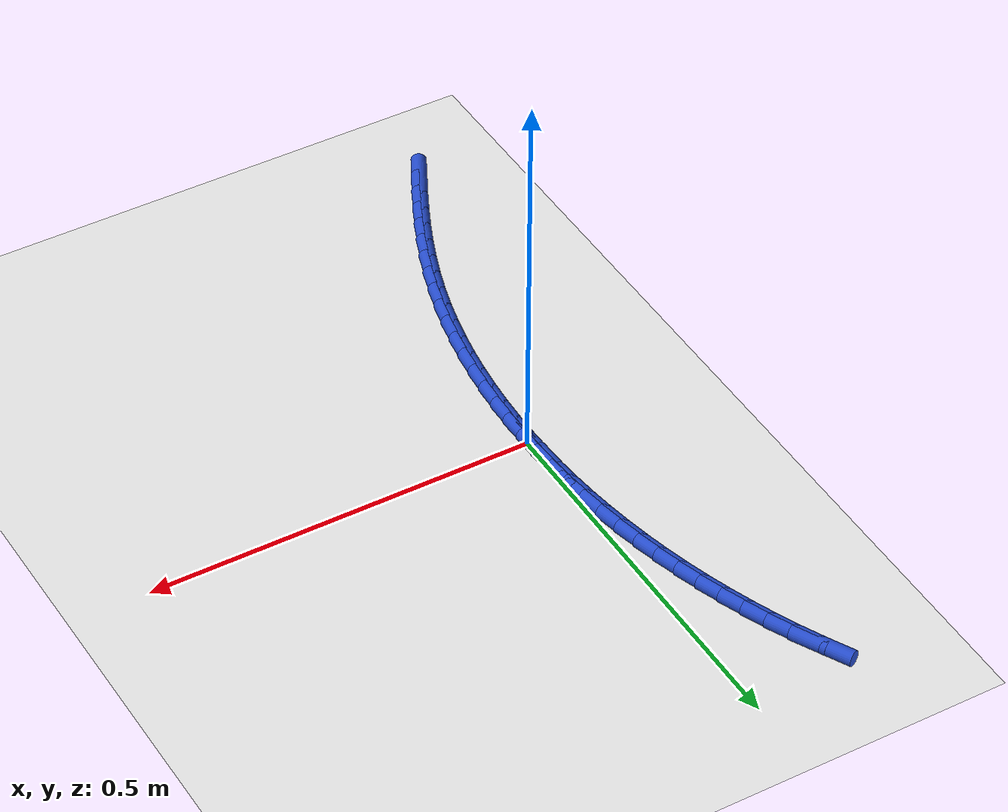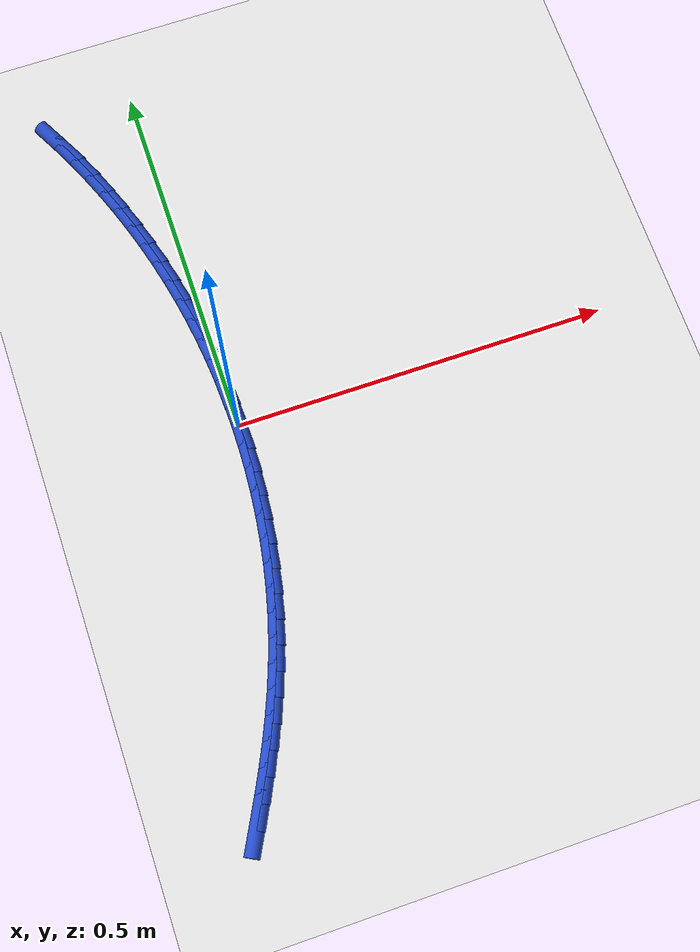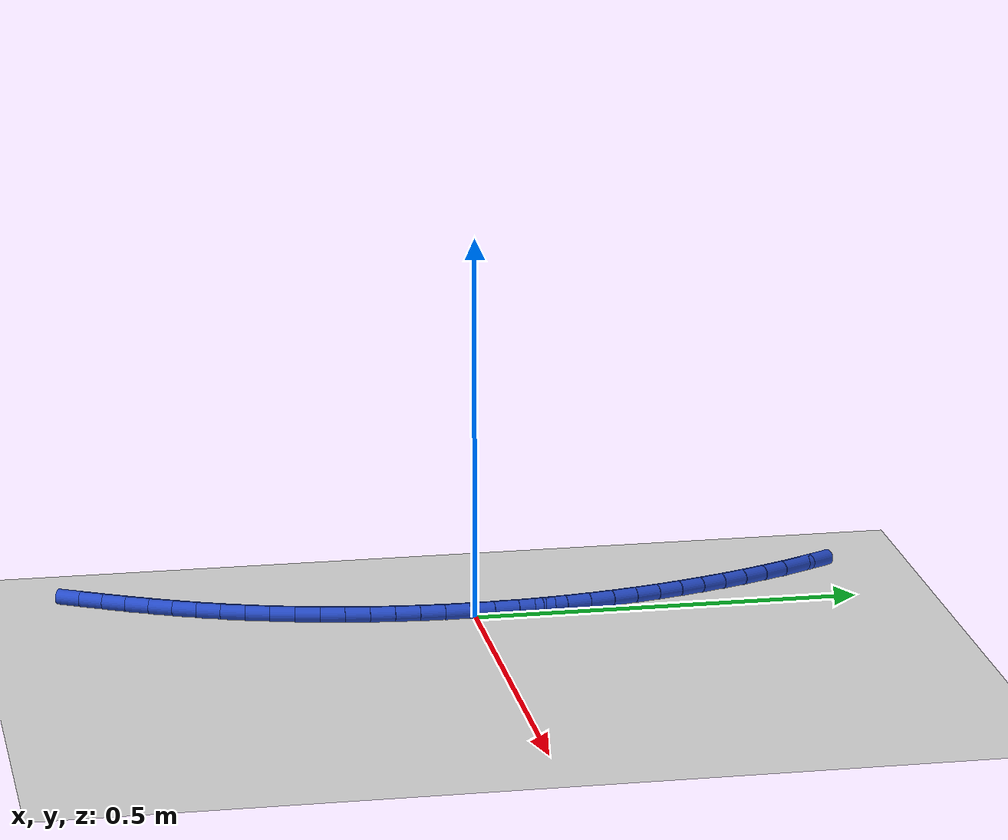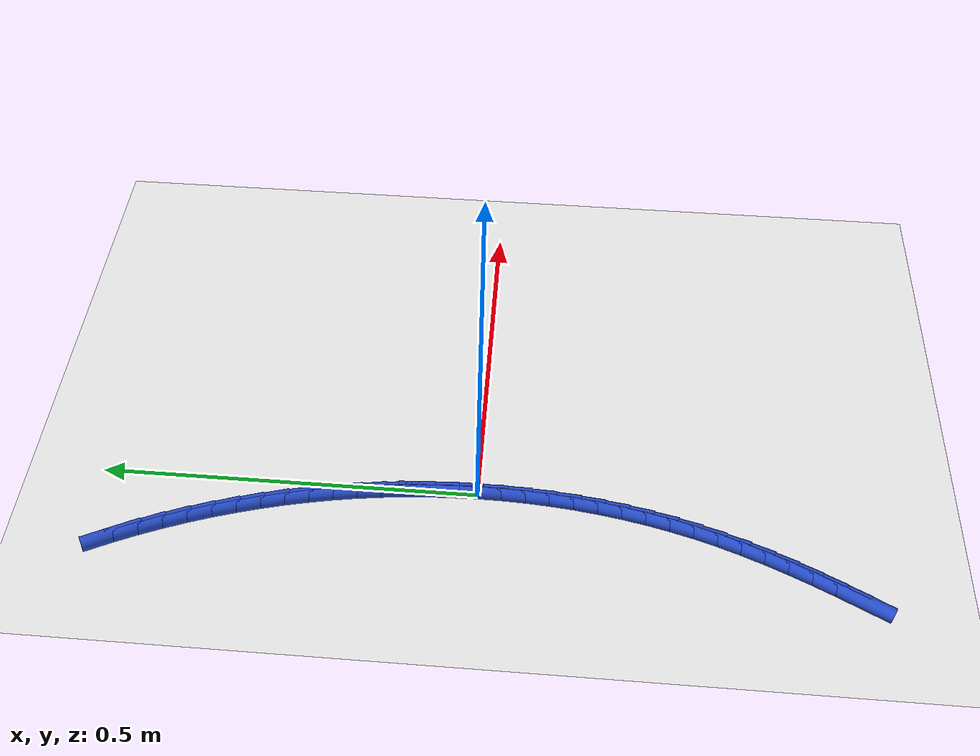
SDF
<sdf version="1.6">
 <world name="default">
  <model name="ground_plane">
   <static>1</static>
   <link name="link">
    <collision name="collision">
     <geometry><plane><normal>0 0 1</normal><size>100 100</size></plane></geometry>
     <surface><friction><ode><mu>100</mu><mu2>50</mu2></ode></friction></surface>
    </collision>
    <visual name="visual">
     <cast_shadows>0</cast_shadows>
     <geometry><plane><normal>0 0 1</normal><size>100 100</size></plane></geometry>
     <material>
      <script><uri>file://media/materials/scripts/gazebo.material</uri><name>Gazebo/WhiteGlow</name></script>
     </material>
    </visual>
   </link>
  </model>
  <model name="line">
   <link name="link_0">
    <pose>-7.806255641895632e-18 -6.938893903907228e-17 0.01 0 1.57 -1.5502114497767827</pose>
    <collision name="collision">
     <geometry><cylinder><radius>0.01</radius><length>0.08</length></cylinder></geometry>
    </collision>
    <visual name="visual">
     <material>
      <script><name>Gazebo/Blue</name><uri>file://media/materials/scripts/gazebo.material</uri></script>
     </material>
     <geometry><cylinder><radius>0.01</radius><length>0.08</length></cylinder></geometry>
    </visual>
   </link>
   <link name="link_1">
    <pose>-0.0006545451815906031 0.03179288983349581 0.01 0 1.57 -1.5194112654657008</pose>
    <collision name="collision">
     <geometry><cylinder><radius>0.01</radius><length>0.08</length></cylinder></geometry>
    </collision>
    <visual name="visual">
     <material>
      <script><name>Gazebo/Blue</name><uri>file://media/materials/scripts/gazebo.material</uri></script>
     </material>
     <geometry><cylinder><radius>0.01</radius><length>0.08</length></cylinder></geometry>
    </visual>
   </link>
   <link name="link_2">
    <pose>-0.002285911572315698 0.0635128150894931 0.01 0 1.57 -1.4886612260125327</pose>
    <collision name="collision">
     <geometry><cylinder><radius>0.01</radius><length>0.08</length></cylinder></geometry>
    </collision>
    <visual name="visual">
     <material>
      <script><name>Gazebo/Blue</name><uri>file://media/materials/scripts/gazebo.material</uri></script>
     </material>
     <geometry><cylinder><radius>0.01</radius><length>0.08</length></cylinder></geometry>
    </visual>
   </link>
   <link name="link_3">
    <pose>-0.004889676211518432 0.09514249386253192 0.01 0 1.57 -1.457968654107246</pose>
    <collision name="collision">
     <geometry><cylinder><radius>0.01</radius><length>0.08</length></cylinder></geometry>
    </collision>
    <visual name="visual">
     <material>
      <script><name>Gazebo/Blue</name><uri>file://media/materials/scripts/gazebo.material</uri></script>
     </material>
     <geometry><cylinder><radius>0.01</radius><length>0.08</length></cylinder></geometry>
    </visual>
   </link>
   <link name="link_4">
    <pose>-0.008461416138541959 0.1266646442471523 0.01 0 1.57 -1.4273402913055626</pose>
    <collision name="collision">
     <geometry><cylinder><radius>0.01</radius><length>0.08</length></cylinder></geometry>
    </collision>
    <visual name="visual">
     <material>
      <script><name>Gazebo/Blue</name><uri>file://media/materials/scripts/gazebo.material</uri></script>
     </material>
     <geometry><cylinder><radius>0.01</radius><length>0.08</length></cylinder></geometry>
    </visual>
   </link>
   <link name="link_5">
    <pose>-0.012996708392729426 0.1580619843378943 0.01 0 1.57 -1.3967823265356045</pose>
    <collision name="collision">
     <geometry><cylinder><radius>0.01</radius><length>0.08</length></cylinder></geometry>
    </collision>
    <visual name="visual">
     <material>
      <script><name>Gazebo/Blue</name><uri>file://media/materials/scripts/gazebo.material</uri></script>
     </material>
     <geometry><cylinder><radius>0.01</radius><length>0.08</length></cylinder></geometry>
    </visual>
   </link>
   <link name="link_6">
    <pose>-0.018491130013423993 0.18931723222929817 0.01 0 1.57 -1.366300429166947</pose>
    <collision name="collision">
     <geometry><cylinder><radius>0.01</radius><length>0.08</length></cylinder></geometry>
    </collision>
    <visual name="visual">
     <material>
      <script><name>Gazebo/Blue</name><uri>file://media/materials/scripts/gazebo.material</uri></script>
     </material>
     <geometry><cylinder><radius>0.01</radius><length>0.08</length></cylinder></geometry>
    </visual>
   </link>
   <link name="link_7">
    <pose>-0.024940258039968806 0.22041310601590383 0.01 0 1.57 -1.3358997859574688</pose>
    <collision name="collision">
     <geometry><cylinder><radius>0.01</radius><length>0.08</length></cylinder></geometry>
    </collision>
    <visual name="visual">
     <material>
      <script><name>Gazebo/Blue</name><uri>file://media/materials/scripts/gazebo.material</uri></script>
     </material>
     <geometry><cylinder><radius>0.01</radius><length>0.08</length></cylinder></geometry>
    </visual>
   </link>
   <link name="link_8">
    <pose>-0.03233966951170701 0.2513323237922514 0.01 0 1.57 -1.305585141182004</pose>
    <collision name="collision">
     <geometry><cylinder><radius>0.01</radius><length>0.08</length></cylinder></geometry>
    </collision>
    <visual name="visual">
     <material>
      <script><name>Gazebo/Blue</name><uri>file://media/materials/scripts/gazebo.material</uri></script>
     </material>
     <geometry><cylinder><radius>0.01</radius><length>0.08</length></cylinder></geometry>
    </visual>
   </link>
   <link name="link_9">
    <pose>-0.04068494146798177 0.282057603652881 0.01 0 1.57 -1.2753534848538681</pose>
    <collision name="collision">
     <geometry><cylinder><radius>0.01</radius><length>0.08</length></cylinder></geometry>
    </collision>
    <visual name="visual">
     <material>
      <script><name>Gazebo/Blue</name><uri>file://media/materials/scripts/gazebo.material</uri></script>
     </material>
     <geometry><cylinder><radius>0.01</radius><length>0.08</length></cylinder></geometry>
    </visual>
   </link>
   <link name="link_10">
    <pose>-0.04997161134263959 0.31257072791308366 0.01 0 1.57 -1.24507595859007</pose>
    <collision name="collision">
     <geometry><cylinder><radius>0.01</radius><length>0.08</length></cylinder></geometry>
    </collision>
    <visual name="visual">
     <material>
      <script><name>Gazebo/Blue</name><uri>file://media/materials/scripts/gazebo.material</uri></script>
     </material>
     <geometry><cylinder><radius>0.01</radius><length>0.08</length></cylinder></geometry>
    </visual>
   </link>
   <link name="link_11">
    <pose>-0.06019458662923318 0.3428385949678555 0.01 0 1.57 -1.2145991080721594</pose>
    <collision name="collision">
     <geometry><cylinder><radius>0.01</radius><length>0.08</length></cylinder></geometry>
    </collision>
    <visual name="visual">
     <material>
      <script><name>Gazebo/Blue</name><uri>file://media/materials/scripts/gazebo.material</uri></script>
     </material>
     <geometry><cylinder><radius>0.01</radius><length>0.08</length></cylinder></geometry>
    </visual>
   </link>
   <link name="link_12">
    <pose>-0.07134827006406931 0.37281617705555664 0.01 0 1.57 -1.1838501128964576</pose>
    <collision name="collision">
     <geometry><cylinder><radius>0.01</radius><length>0.08</length></cylinder></geometry>
    </collision>
    <visual name="visual">
     <material>
      <script><name>Gazebo/Blue</name><uri>file://media/materials/scripts/gazebo.material</uri></script>
     </material>
     <geometry><cylinder><radius>0.01</radius><length>0.08</length></cylinder></geometry>
    </visual>
   </link>
   <link name="link_13">
    <pose>-0.08342705020042383 0.40245811130484677 0.01 0 1.57 -1.1527600652654522</pose>
    <collision name="collision">
     <geometry><cylinder><radius>0.01</radius><length>0.08</length></cylinder></geometry>
    </collision>
    <visual name="visual">
     <material>
      <script><name>Gazebo/Blue</name><uri>file://media/materials/scripts/gazebo.material</uri></script>
     </material>
     <geometry><cylinder><radius>0.01</radius><length>0.08</length></cylinder></geometry>
    </visual>
   </link>
   <link name="link_14">
    <pose>-0.0964253155915726 0.4317190348443852 0.01 0 1.57 -1.1212614168789854</pose>
    <collision name="collision">
     <geometry><cylinder><radius>0.01</radius><length>0.08</length></cylinder></geometry>
    </collision>
    <visual name="visual">
     <material>
      <script><name>Gazebo/Blue</name><uri>file://media/materials/scripts/gazebo.material</uri></script>
     </material>
     <geometry><cylinder><radius>0.01</radius><length>0.08</length></cylinder></geometry>
    </visual>
   </link>
   <link name="link_15">
    <pose>-0.11033745479079128 0.4605535848028308 0.01 0 1.57 -1.089288135667351</pose>
    <collision name="collision">
     <geometry><cylinder><radius>0.01</radius><length>0.08</length></cylinder></geometry>
    </collision>
    <visual name="visual">
     <material>
      <script><name>Gazebo/Blue</name><uri>file://media/materials/scripts/gazebo.material</uri></script>
     </material>
     <geometry><cylinder><radius>0.01</radius><length>0.08</length></cylinder></geometry>
    </visual>
   </link>
   <link name="link_194">
    <pose>-0.12935002741454898 -0.4847009059654976 0.01 0 1.57 1.082067612410626</pose>
    <collision name="collision">
     <geometry><cylinder><radius>0.01</radius><length>0.08</length></cylinder></geometry>
    </collision>
    <visual name="visual">
     <material>
      <script><name>Gazebo/Blue</name><uri>file://media/materials/scripts/gazebo.material</uri></script>
     </material>
     <geometry><cylinder><radius>0.01</radius><length>0.08</length></cylinder></geometry>
    </visual>
   </link>
   <link name="link_195">
    <pose>-0.11442447314265813 -0.45663249423115376 0.01 0 1.57 1.1010715939053046</pose>
    <collision name="collision">
     <geometry><cylinder><radius>0.01</radius><length>0.08</length></cylinder></geometry>
    </collision>
    <visual name="visual">
     <material>
      <script><name>Gazebo/Blue</name><uri>file://media/materials/scripts/gazebo.material</uri></script>
     </material>
     <geometry><cylinder><radius>0.01</radius><length>0.08</length></cylinder></geometry>
    </visual>
   </link>
   <link name="link_196">
    <pose>-0.10006607040061731 -0.4283467438644201 0.01 0 1.57 1.1236674957274262</pose>
    <collision name="collision">
     <geometry><cylinder><radius>0.01</radius><length>0.08</length></cylinder></geometry>
    </collision>
    <visual name="visual">
     <material>
      <script><name>Gazebo/Blue</name><uri>file://media/materials/scripts/gazebo.material</uri></script>
     </material>
     <geometry><cylinder><radius>0.01</radius><length>0.08</length></cylinder></geometry>
    </visual>
   </link>
   <link name="link_197">
    <pose>-0.0863790876703904 -0.3998035835749863 0.01 0 1.57 1.1498758193215313</pose>
    <collision name="collision">
     <geometry><cylinder><radius>0.01</radius><length>0.08</length></cylinder></geometry>
    </collision>
    <visual name="visual">
     <material>
      <script><name>Gazebo/Blue</name><uri>file://media/materials/scripts/gazebo.material</uri></script>
     </material>
     <geometry><cylinder><radius>0.01</radius><length>0.08</length></cylinder></geometry>
    </visual>
   </link>
   <link name="link_198">
    <pose>-0.07346779343394015 -0.3709629420725398 0.01 0 1.57 1.179697467451825</pose>
    <collision name="collision">
     <geometry><cylinder><radius>0.01</radius><length>0.08</length></cylinder></geometry>
    </collision>
    <visual name="visual">
     <material>
      <script><name>Gazebo/Blue</name><uri>file://media/materials/scripts/gazebo.material</uri></script>
     </material>
     <geometry><cylinder><radius>0.01</radius><length>0.08</length></cylinder></geometry>
    </visual>
   </link>
   <link name="link_199">
    <pose>-0.06143645617322975 -0.341784748066769 0.01 0 1.57 1.2131034455704082</pose>
    <collision name="collision">
     <geometry><cylinder><radius>0.01</radius><length>0.08</length></cylinder></geometry>
    </collision>
    <visual name="visual">
     <material>
      <script><name>Gazebo/Blue</name><uri>file://media/materials/scripts/gazebo.material</uri></script>
     </material>
     <geometry><cylinder><radius>0.01</radius><length>0.08</length></cylinder></geometry>
    </visual>
   </link>
   <link name="link_200">
    <pose>-0.05038934437022231 -0.3122289302673619 0.01 0 1.57 1.249968692829405</pose>
    <collision name="collision">
     <geometry><cylinder><radius>0.01</radius><length>0.08</length></cylinder></geometry>
    </collision>
    <visual name="visual">
     <material>
      <script><name>Gazebo/Blue</name><uri>file://media/materials/scripts/gazebo.material</uri></script>
     </material>
     <geometry><cylinder><radius>0.01</radius><length>0.08</length></cylinder></geometry>
    </visual>
   </link>
   <link name="link_201">
    <pose>-0.0404292689809842 -0.2822565252816068 0.01 0 1.57 1.2882527822024525</pose>
    <collision name="collision">
     <geometry><cylinder><radius>0.01</radius><length>0.08</length></cylinder></geometry>
    </collision>
    <visual name="visual">
     <material>
      <script><name>Gazebo/Blue</name><uri>file://media/materials/scripts/gazebo.material</uri></script>
     </material>
     <geometry><cylinder><radius>0.01</radius><length>0.08</length></cylinder></geometry>
    </visual>
   </link>
   <link name="link_202">
    <pose>-0.03160716934435438 -0.25186799847778735 0.01 0 1.57 1.3255368548065216</pose>
    <collision name="collision">
     <geometry><cylinder><radius>0.01</radius><length>0.08</length></cylinder></geometry>
    </collision>
    <visual name="visual">
     <material>
      <script><name>Gazebo/Blue</name><uri>file://media/materials/scripts/gazebo.material</uri></script>
     </material>
     <geometry><cylinder><radius>0.01</radius><length>0.08</length></cylinder></geometry>
    </visual>
   </link>
   <link name="link_203">
    <pose>-0.023909248686778642 -0.2211130225718648 0.01 0 1.57 1.3617337429129805</pose>
    <collision name="collision">
     <geometry><cylinder><radius>0.01</radius><length>0.08</length></cylinder></geometry>
    </collision>
    <visual name="visual">
     <material>
      <script><name>Gazebo/Blue</name><uri>file://media/materials/scripts/gazebo.material</uri></script>
     </material>
     <geometry><cylinder><radius>0.01</radius><length>0.08</length></cylinder></geometry>
    </visual>
   </link>
   <link name="link_204">
    <pose>-0.017317640157098947 -0.1900443640356065 0.01 0 1.57 1.3969162220914713</pose>
    <collision name="collision">
     <geometry><cylinder><radius>0.01</radius><length>0.08</length></cylinder></geometry>
    </collision>
    <visual name="visual">
     <material>
      <script><name>Gazebo/Blue</name><uri>file://media/materials/scripts/gazebo.material</uri></script>
     </material>
     <geometry><cylinder><radius>0.01</radius><length>0.08</length></cylinder></geometry>
    </visual>
   </link>
   <link name="link_205">
    <pose>-0.01181447690415748 -0.15871478934078018 0.01 0 1.57 1.4311623152140365</pose>
    <collision name="collision">
     <geometry><cylinder><radius>0.01</radius><length>0.08</length></cylinder></geometry>
    </collision>
    <visual name="visual">
     <material>
      <script><name>Gazebo/Blue</name><uri>file://media/materials/scripts/gazebo.material</uri></script>
     </material>
     <geometry><cylinder><radius>0.01</radius><length>0.08</length></cylinder></geometry>
    </visual>
   </link>
   <link name="link_206">
    <pose>-0.007381892076796429 -0.12717706495915354 0.01 0 1.57 1.464554078838963</pose>
    <collision name="collision">
     <geometry><cylinder><radius>0.01</radius><length>0.08</length></cylinder></geometry>
    </collision>
    <visual name="visual">
     <material>
      <script><name>Gazebo/Blue</name><uri>file://media/materials/scripts/gazebo.material</uri></script>
     </material>
     <geometry><cylinder><radius>0.01</radius><length>0.08</length></cylinder></geometry>
    </visual>
   </link>
   <link name="link_207">
    <pose>-0.004002018823857969 -0.09548395736249446 0.01 0 1.57 1.49717666642718</pose>
    <collision name="collision">
     <geometry><cylinder><radius>0.01</radius><length>0.08</length></cylinder></geometry>
    </collision>
    <visual name="visual">
     <material>
      <script><name>Gazebo/Blue</name><uri>file://media/materials/scripts/gazebo.material</uri></script>
     </material>
     <geometry><cylinder><radius>0.01</radius><length>0.08</length></cylinder></geometry>
    </visual>
   </link>
   <link name="link_208">
    <pose>-0.0016569902941842916 -0.06368823302257068 0.01 0 1.57 1.5291176447944892</pose>
    <collision name="collision">
     <geometry><cylinder><radius>0.01</radius><length>0.08</length></cylinder></geometry>
    </collision>
    <visual name="visual">
     <material>
      <script><name>Gazebo/Blue</name><uri>file://media/materials/scripts/gazebo.material</uri></script>
     </material>
     <geometry><cylinder><radius>0.01</radius><length>0.08</length></cylinder></geometry>
    </visual>
   </link>
   <link name="link_209">
    <pose>-0.00032893963661755933 -0.03184265841114926 0.01 0 1.57 1.5604665379781666</pose>
    <collision name="collision">
     <geometry><cylinder><radius>0.01</radius><length>0.08</length></cylinder></geometry>
    </collision>
    <visual name="visual">
     <material>
      <script><name>Gazebo/Blue</name><uri>file://media/materials/scripts/gazebo.material</uri></script>
     </material>
     <geometry><cylinder><radius>0.01</radius><length>0.08</length></cylinder></geometry>
    </visual>
   </link>
   <link name="link_210">
    <pose>-1.214306433183765e-17 -2.0122792321330962e-16 0.01 0 1.57 -1.5502780806984178</pose>
    <collision name="collision">
     <geometry><cylinder><radius>0.01</radius><length>0.08</length></cylinder></geometry>
    </collision>
    <visual name="visual">
     <material>
      <script><name>Gazebo/Blue</name><uri>file://media/materials/scripts/gazebo.material</uri></script>
     </material>
     <geometry><cylinder><radius>0.01</radius><length>0.08</length></cylinder></geometry>
    </visual>
   </link>
   <link name="link_211">
    <pose>-0.0006523045331737736 0.031786975739110906 0.01 0 1.57 -1.5198380506986127</pose>
    <collision name="collision">
     <geometry><cylinder><radius>0.01</radius><length>0.08</length></cylinder></geometry>
    </collision>
    <visual name="visual">
     <material>
      <script><name>Gazebo/Blue</name><uri>file://media/materials/scripts/gazebo.material</uri></script>
     </material>
     <geometry><cylinder><radius>0.01</radius><length>0.08</length></cylinder></geometry>
    </visual>
   </link>
   <link name="link_212">
    <pose>-0.002267986384981154 0.06346550233441706 0.01 0 1.57 -1.5350757919826572</pose>
    <collision name="collision">
     <geometry><cylinder><radius>0.01</radius><length>0.08</length></cylinder></geometry>
    </collision>
    <visual name="visual">
     <material>
      <script><name>Gazebo/Blue</name><uri>file://media/materials/scripts/gazebo.material</uri></script>
     </material>
     <geometry><cylinder><radius>0.01</radius><length>0.08</length></cylinder></geometry>
    </visual>
   </link>
  </model>
 </world>
</sdf>
